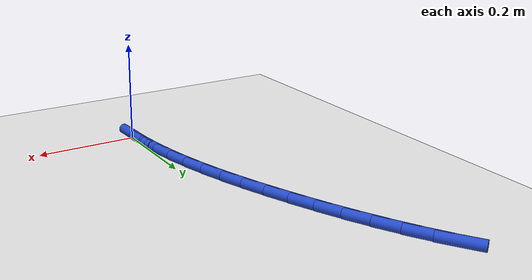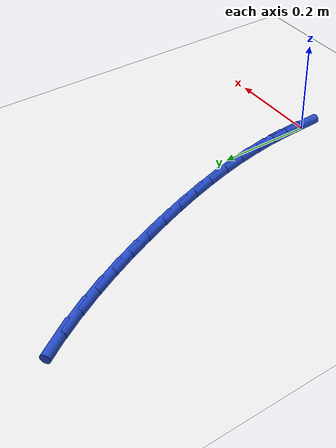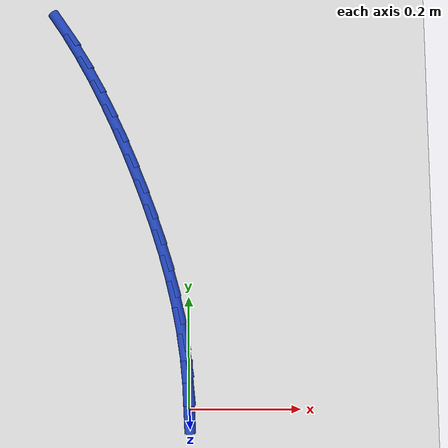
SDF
<sdf version="1.6">
 <world name="default">
  <model name="ground_plane">
   <static>1</static>
   <link name="link">
    <collision name="collision">
     <geometry><plane><normal>0 0 1</normal><size>100 100</size></plane></geometry>
     <surface><friction><ode><mu>100</mu><mu2>50</mu2></ode></friction></surface>
    </collision>
    <visual name="visual">
     <cast_shadows>0</cast_shadows>
     <geometry><plane><normal>0 0 1</normal><size>100 100</size></plane></geometry>
     <material>
      <script><uri>file://media/materials/scripts/gazebo.material</uri><name>Gazebo/WhiteGlow</name></script>
     </material>
    </visual>
   </link>
  </model>
  <model name="line">
   <link name="link_0">
    <pose>2.949029909160572e-17 1.3877787807814457e-17 0.01 0 1.57 -1.5270500790770785</pose>
    <collision name="collision">
     <geometry><cylinder><radius>0.01</radius><length>0.08</length></cylinder></geometry>
    </collision>
    <visual name="visual">
     <material>
      <script><name>Gazebo/Blue</name><uri>file://media/materials/scripts/gazebo.material</uri></script>
     </material>
     <geometry><cylinder><radius>0.01</radius><length>0.08</length></cylinder></geometry>
    </visual>
   </link>
   <link name="link_1">
    <pose>-0.0021080150234855937 0.04815659022169293 0.01 0 1.57 -1.4753095987433837</pose>
    <collision name="collision">
     <geometry><cylinder><radius>0.01</radius><length>0.08</length></cylinder></geometry>
    </collision>
    <visual name="visual">
     <material>
      <script><name>Gazebo/Blue</name><uri>file://media/materials/scripts/gazebo.material</uri></script>
     </material>
     <geometry><cylinder><radius>0.01</radius><length>0.08</length></cylinder></geometry>
    </visual>
   </link>
   <link name="link_2">
    <pose>-0.006684725116972691 0.09594115684310281 0.01 0 1.57 -1.4264951042731515</pose>
    <collision name="collision">
     <geometry><cylinder><radius>0.01</radius><length>0.08</length></cylinder></geometry>
    </collision>
    <visual name="visual">
     <material>
      <script><name>Gazebo/Blue</name><uri>file://media/materials/scripts/gazebo.material</uri></script>
     </material>
     <geometry><cylinder><radius>0.01</radius><length>0.08</length></cylinder></geometry>
    </visual>
   </link>
   <link name="link_3">
    <pose>-0.013582654966851319 0.1434111987764339 0.01 0 1.57 -1.3809663778536763</pose>
    <collision name="collision">
     <geometry><cylinder><radius>0.01</radius><length>0.08</length></cylinder></geometry>
    </collision>
    <visual name="visual">
     <material>
      <script><name>Gazebo/Blue</name><uri>file://media/materials/scripts/gazebo.material</uri></script>
     </material>
     <geometry><cylinder><radius>0.01</radius><length>0.08</length></cylinder></geometry>
    </visual>
   </link>
   <link name="link_4">
    <pose>-0.022654329259511566 0.1906242149338905 0.01 0 1.57 -1.3389813049151889</pose>
    <collision name="collision">
     <geometry><cylinder><radius>0.01</radius><length>0.08</length></cylinder></geometry>
    </collision>
    <visual name="visual">
     <material>
      <script><name>Gazebo/Blue</name><uri>file://media/materials/scripts/gazebo.material</uri></script>
     </material>
     <geometry><cylinder><radius>0.01</radius><length>0.08</length></cylinder></geometry>
    </visual>
   </link>
   <link name="link_5">
    <pose>-0.03375227268134352 0.23763770422767705 0.01 0 1.57 -1.3007036057564132</pose>
    <collision name="collision">
     <geometry><cylinder><radius>0.01</radius><length>0.08</length></cylinder></geometry>
    </collision>
    <visual name="visual">
     <material>
      <script><name>Gazebo/Blue</name><uri>file://media/materials/scripts/gazebo.material</uri></script>
     </material>
     <geometry><cylinder><radius>0.01</radius><length>0.08</length></cylinder></geometry>
    </visual>
   </link>
   <link name="link_6">
    <pose>-0.046729009918737276 0.2845091655699978 0.01 0 1.57 -1.2662155867814395</pose>
    <collision name="collision">
     <geometry><cylinder><radius>0.01</radius><length>0.08</length></cylinder></geometry>
    </collision>
    <visual name="visual">
     <material>
      <script><name>Gazebo/Blue</name><uri>file://media/materials/scripts/gazebo.material</uri></script>
     </material>
     <geometry><cylinder><radius>0.01</radius><length>0.08</length></cylinder></geometry>
    </visual>
   </link>
   <link name="link_7">
    <pose>-0.061437065658082886 0.331296097873057 0.01 0 1.57 -1.2355333233967374</pose>
    <collision name="collision">
     <geometry><cylinder><radius>0.01</radius><length>0.08</length></cylinder></geometry>
    </collision>
    <visual name="visual">
     <material>
      <script><name>Gazebo/Blue</name><uri>file://media/materials/scripts/gazebo.material</uri></script>
     </material>
     <geometry><cylinder><radius>0.01</radius><length>0.08</length></cylinder></geometry>
    </visual>
   </link>
   <link name="link_8">
    <pose>-0.07772896458577044 0.37805600004905904 0.01 0 1.57 -1.208622172362613</pose>
    <collision name="collision">
     <geometry><cylinder><radius>0.01</radius><length>0.08</length></cylinder></geometry>
    </collision>
    <visual name="visual">
     <material>
      <script><name>Gazebo/Blue</name><uri>file://media/materials/scripts/gazebo.material</uri></script>
     </material>
     <geometry><cylinder><radius>0.01</radius><length>0.08</length></cylinder></geometry>
    </visual>
   </link>
   <link name="link_9">
    <pose>-0.09545723138819004 0.4248463710102083 0.01 0 1.57 -1.1848216344786682</pose>
    <collision name="collision">
     <geometry><cylinder><radius>0.01</radius><length>0.08</length></cylinder></geometry>
    </collision>
    <visual name="visual">
     <material>
      <script><name>Gazebo/Blue</name><uri>file://media/materials/scripts/gazebo.material</uri></script>
     </material>
     <geometry><cylinder><radius>0.01</radius><length>0.08</length></cylinder></geometry>
    </visual>
   </link>
   <link name="link_10">
    <pose>-0.11449365346020324 0.4716928927452237 0.01 0 1.57 -1.1597349410565683</pose>
    <collision name="collision">
     <geometry><cylinder><radius>0.01</radius><length>0.08</length></cylinder></geometry>
    </collision>
    <visual name="visual">
     <material>
      <script><name>Gazebo/Blue</name><uri>file://media/materials/scripts/gazebo.material</uri></script>
     </material>
     <geometry><cylinder><radius>0.01</radius><length>0.08</length></cylinder></geometry>
    </visual>
   </link>
   <link name="link_11">
    <pose>-0.13484921044014098 0.5183913382989808 0.01 0 1.57 -1.1312293684521706</pose>
    <collision name="collision">
     <geometry><cylinder><radius>0.01</radius><length>0.08</length></cylinder></geometry>
    </collision>
    <visual name="visual">
     <material>
      <script><name>Gazebo/Blue</name><uri>file://media/materials/scripts/gazebo.material</uri></script>
     </material>
     <geometry><cylinder><radius>0.01</radius><length>0.08</length></cylinder></geometry>
    </visual>
   </link>
   <link name="link_12">
    <pose>-0.15659604868870441 0.5646364493931437 0.01 0 1.57 -1.098960488393815</pose>
    <collision name="collision">
     <geometry><cylinder><radius>0.01</radius><length>0.08</length></cylinder></geometry>
    </collision>
    <visual name="visual">
     <material>
      <script><name>Gazebo/Blue</name><uri>file://media/materials/scripts/gazebo.material</uri></script>
     </material>
     <geometry><cylinder><radius>0.01</radius><length>0.08</length></cylinder></geometry>
    </visual>
   </link>
   <link name="link_13">
    <pose>-0.1798065778946938 0.610122532800679 0.01 0 1.57 -1.0625271897896644</pose>
    <collision name="collision">
     <geometry><cylinder><radius>0.01</radius><length>0.08</length></cylinder></geometry>
    </collision>
    <visual name="visual">
     <material>
      <script><name>Gazebo/Blue</name><uri>file://media/materials/scripts/gazebo.material</uri></script>
     </material>
     <geometry><cylinder><radius>0.01</radius><length>0.08</length></cylinder></geometry>
    </visual>
   </link>
   <link name="link_14">
    <pose>-0.20455320774690908 0.6545438952945523 0.01 0 1.57 -1.0214654885212713</pose>
    <collision name="collision">
     <geometry><cylinder><radius>0.01</radius><length>0.08</length></cylinder></geometry>
    </collision>
    <visual name="visual">
     <material>
      <script><name>Gazebo/Blue</name><uri>file://media/materials/scripts/gazebo.material</uri></script>
     </material>
     <geometry><cylinder><radius>0.01</radius><length>0.08</length></cylinder></geometry>
    </visual>
   </link>
   <link name="link_15">
    <pose>-0.23090834793415044 0.6975948436477297 0.01 0 1.57 -0.9752548873377626</pose>
    <collision name="collision">
     <geometry><cylinder><radius>0.01</radius><length>0.08</length></cylinder></geometry>
    </collision>
    <visual name="visual">
     <material>
      <script><name>Gazebo/Blue</name><uri>file://media/materials/scripts/gazebo.material</uri></script>
     </material>
     <geometry><cylinder><radius>0.01</radius><length>0.08</length></cylinder></geometry>
    </visual>
   </link>
   <link name="link_141">
    <pose>-0.0021376609140607086 0.0481098672772058 0.01 0 1.57 -1.5263926333987776</pose>
    <collision name="collision">
     <geometry><cylinder><radius>0.01</radius><length>0.08</length></cylinder></geometry>
    </collision>
    <visual name="visual">
     <material>
      <script><name>Gazebo/Blue</name><uri>file://media/materials/scripts/gazebo.material</uri></script>
     </material>
     <geometry><cylinder><radius>0.01</radius><length>0.08</length></cylinder></geometry>
    </visual>
   </link>
  </model>
 </world>
</sdf>
